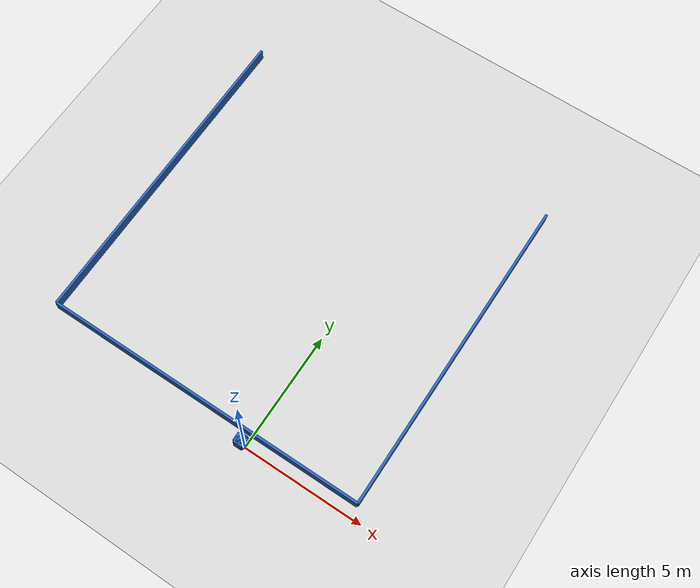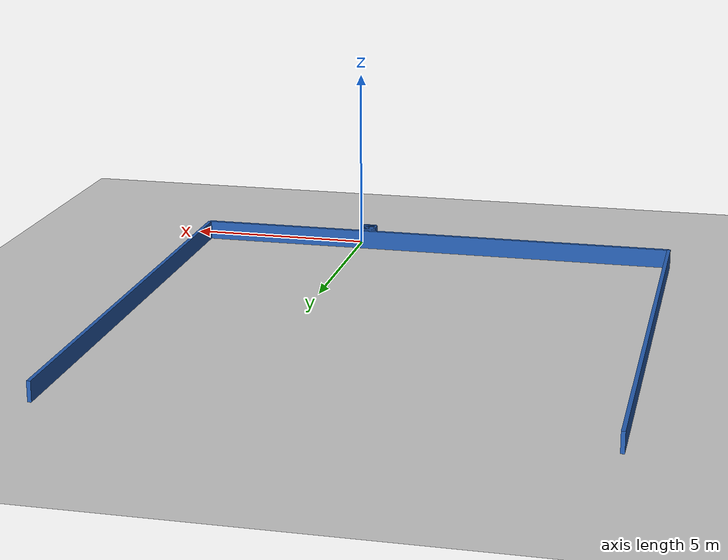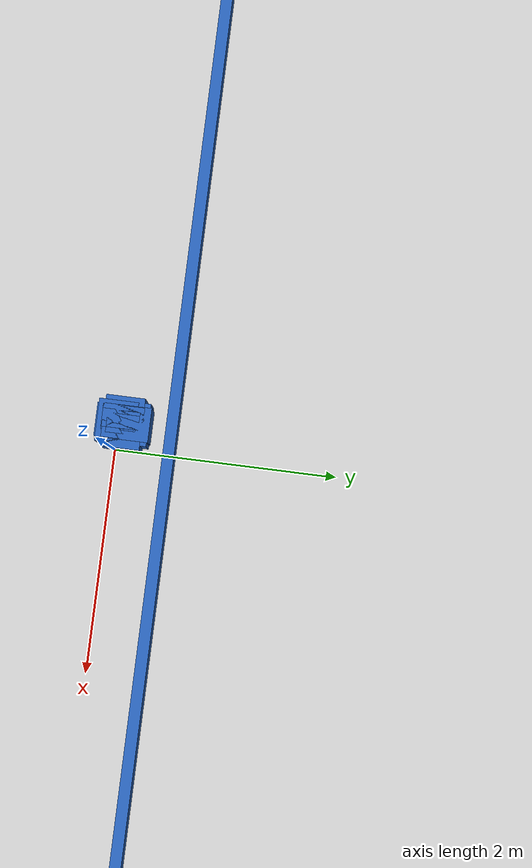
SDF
<?xml version="1.0" ?>
    <sdf version="1.5">
      <world name="default">
        <!-- A global light source -->
        <include>
          <uri>model://sun</uri>
        </include>
        <!-- A ground plane -->
        <include>
          <uri>model://ground_plane</uri>
        </include>

    <model name='libopen_space_final_T2B_129_11'>
      <static>1</static>
      <pose frame=''>-0.225000 0.075000 0.000000 0.000000 0.000000 0.000000</pose>
      <link name='link'>
        <inertial>
          <mass>1</mass>
          <inertia>
            <ixx>0.145833</ixx>
            <ixy>0</ixy>
            <ixz>0</ixz>
            <iyy>0.145833</iyy>
            <iyz>0</iyz>
            <izz>0.125</izz>
          </inertia>
        </inertial>
        <collision name='collision'>
          <geometry>
            <box>
              <size>0.14 0.28 1</size>
            </box>
          </geometry>
          <max_contacts>10</max_contacts>
          <surface>
            <contact>
              <ode/>
            </contact>
            <bounce/>
            <friction>
              <torsional>
                <ode/>
              </torsional>
              <ode/>
            </friction>
          </surface>
        </collision>
        <visual name='visual'>
          <geometry>
            <box>
              <size>0.14 0.28 1</size>
            </box>
          </geometry>
	    <material>
              <ambient>0.152000 0.379000 0.720000 1</ambient>
	      <diffuse>0.152000 0.379000 0.720000 1</diffuse>
          </material>
          <material>
            <script>
              <name>Gazebo/Grey</name>
              <uri>file://media/materials/scripts/gazebo.material</uri>
            </script>
          </material>
        </visual>
        <self_collide>0</self_collide>
        <kinematic>0</kinematic>
        <gravity>1</gravity>
      </link>
      <plugin name='libopen_space_final_T2B_129_11' filename='libopen_space_final_T2B_129_11.so'/>
    </model>

    <model name='libopen_space_final_T2B_122_30'>
      <static>1</static>
      <pose frame=''>-0.225000 0.075000 0.000000 0.000000 0.000000 0.000000</pose>
      <link name='link'>
        <inertial>
          <mass>1</mass>
          <inertia>
            <ixx>0.145833</ixx>
            <ixy>0</ixy>
            <ixz>0</ixz>
            <iyy>0.145833</iyy>
            <iyz>0</iyz>
            <izz>0.125</izz>
          </inertia>
        </inertial>
        <collision name='collision'>
          <geometry>
            <box>
              <size>0.30 0.47 1</size>
            </box>
          </geometry>
          <max_contacts>10</max_contacts>
          <surface>
            <contact>
              <ode/>
            </contact>
            <bounce/>
            <friction>
              <torsional>
                <ode/>
              </torsional>
              <ode/>
            </friction>
          </surface>
        </collision>
        <visual name='visual'>
          <geometry>
            <box>
              <size>0.30 0.47 1</size>
            </box>
          </geometry>
	    <material>
              <ambient>0.152000 0.379000 0.720000 1</ambient>
	      <diffuse>0.152000 0.379000 0.720000 1</diffuse>
          </material>
          <material>
            <script>
              <name>Gazebo/Grey</name>
              <uri>file://media/materials/scripts/gazebo.material</uri>
            </script>
          </material>
        </visual>
        <self_collide>0</self_collide>
        <kinematic>0</kinematic>
        <gravity>1</gravity>
      </link>
      <plugin name='libopen_space_final_T2B_122_30' filename='libopen_space_final_T2B_122_30.so'/>
    </model>

    <model name='libopen_space_final_T2B_134_25'>
      <static>1</static>
      <pose frame=''>-0.225000 0.075000 0.000000 0.000000 0.000000 0.000000</pose>
      <link name='link'>
        <inertial>
          <mass>1</mass>
          <inertia>
            <ixx>0.145833</ixx>
            <ixy>0</ixy>
            <ixz>0</ixz>
            <iyy>0.145833</iyy>
            <iyz>0</iyz>
            <izz>0.125</izz>
          </inertia>
        </inertial>
        <collision name='collision'>
          <geometry>
            <box>
              <size>0.21 0.37 1</size>
            </box>
          </geometry>
          <max_contacts>10</max_contacts>
          <surface>
            <contact>
              <ode/>
            </contact>
            <bounce/>
            <friction>
              <torsional>
                <ode/>
              </torsional>
              <ode/>
            </friction>
          </surface>
        </collision>
        <visual name='visual'>
          <geometry>
            <box>
              <size>0.21 0.37 1</size>
            </box>
          </geometry>
	    <material>
              <ambient>0.152000 0.379000 0.720000 1</ambient>
	      <diffuse>0.152000 0.379000 0.720000 1</diffuse>
          </material>
          <material>
            <script>
              <name>Gazebo/Grey</name>
              <uri>file://media/materials/scripts/gazebo.material</uri>
            </script>
          </material>
        </visual>
        <self_collide>0</self_collide>
        <kinematic>0</kinematic>
        <gravity>1</gravity>
      </link>
      <plugin name='libopen_space_final_T2B_134_25' filename='libopen_space_final_T2B_134_25.so'/>
    </model>

    <model name='libopen_space_final_T2B_125_67'>
      <static>1</static>
      <pose frame=''>-0.225000 0.075000 0.000000 0.000000 0.000000 0.000000</pose>
      <link name='link'>
        <inertial>
          <mass>1</mass>
          <inertia>
            <ixx>0.145833</ixx>
            <ixy>0</ixy>
            <ixz>0</ixz>
            <iyy>0.145833</iyy>
            <iyz>0</iyz>
            <izz>0.125</izz>
          </inertia>
        </inertial>
        <collision name='collision'>
          <geometry>
            <box>
              <size>0.31 0.25 1</size>
            </box>
          </geometry>
          <max_contacts>10</max_contacts>
          <surface>
            <contact>
              <ode/>
            </contact>
            <bounce/>
            <friction>
              <torsional>
                <ode/>
              </torsional>
              <ode/>
            </friction>
          </surface>
        </collision>
        <visual name='visual'>
          <geometry>
            <box>
              <size>0.31 0.25 1</size>
            </box>
          </geometry>
	    <material>
              <ambient>0.152000 0.379000 0.720000 1</ambient>
	      <diffuse>0.152000 0.379000 0.720000 1</diffuse>
          </material>
          <material>
            <script>
              <name>Gazebo/Grey</name>
              <uri>file://media/materials/scripts/gazebo.material</uri>
            </script>
          </material>
        </visual>
        <self_collide>0</self_collide>
        <kinematic>0</kinematic>
        <gravity>1</gravity>
      </link>
      <plugin name='libopen_space_final_T2B_125_67' filename='libopen_space_final_T2B_125_67.so'/>
    </model>

    <model name='libopen_space_final_T2B_77_65'>
      <static>1</static>
      <pose frame=''>-0.225000 0.075000 0.000000 0.000000 0.000000 0.000000</pose>
      <link name='link'>
        <inertial>
          <mass>1</mass>
          <inertia>
            <ixx>0.145833</ixx>
            <ixy>0</ixy>
            <ixz>0</ixz>
            <iyy>0.145833</iyy>
            <iyz>0</iyz>
            <izz>0.125</izz>
          </inertia>
        </inertial>
        <collision name='collision'>
          <geometry>
            <box>
              <size>0.20 0.28 1</size>
            </box>
          </geometry>
          <max_contacts>10</max_contacts>
          <surface>
            <contact>
              <ode/>
            </contact>
            <bounce/>
            <friction>
              <torsional>
                <ode/>
              </torsional>
              <ode/>
            </friction>
          </surface>
        </collision>
        <visual name='visual'>
          <geometry>
            <box>
              <size>0.20 0.28 1</size>
            </box>
          </geometry>
	    <material>
              <ambient>0.152000 0.379000 0.720000 1</ambient>
	      <diffuse>0.152000 0.379000 0.720000 1</diffuse>
          </material>
          <material>
            <script>
              <name>Gazebo/Grey</name>
              <uri>file://media/materials/scripts/gazebo.material</uri>
            </script>
          </material>
        </visual>
        <self_collide>0</self_collide>
        <kinematic>0</kinematic>
        <gravity>1</gravity>
      </link>
      <plugin name='libopen_space_final_T2B_77_65' filename='libopen_space_final_T2B_77_65.so'/>
    </model>

    <model name='libopen_space_final_T2B_85_42'>
      <static>1</static>
      <pose frame=''>-0.225000 0.075000 0.000000 0.000000 0.000000 0.000000</pose>
      <link name='link'>
        <inertial>
          <mass>1</mass>
          <inertia>
            <ixx>0.145833</ixx>
            <ixy>0</ixy>
            <ixz>0</ixz>
            <iyy>0.145833</iyy>
            <iyz>0</iyz>
            <izz>0.125</izz>
          </inertia>
        </inertial>
        <collision name='collision'>
          <geometry>
            <box>
              <size>0.45 0.34 1</size>
            </box>
          </geometry>
          <max_contacts>10</max_contacts>
          <surface>
            <contact>
              <ode/>
            </contact>
            <bounce/>
            <friction>
              <torsional>
                <ode/>
              </torsional>
              <ode/>
            </friction>
          </surface>
        </collision>
        <visual name='visual'>
          <geometry>
            <box>
              <size>0.45 0.34 1</size>
            </box>
          </geometry>
	    <material>
              <ambient>0.152000 0.379000 0.720000 1</ambient>
	      <diffuse>0.152000 0.379000 0.720000 1</diffuse>
          </material>
          <material>
            <script>
              <name>Gazebo/Grey</name>
              <uri>file://media/materials/scripts/gazebo.material</uri>
            </script>
          </material>
        </visual>
        <self_collide>0</self_collide>
        <kinematic>0</kinematic>
        <gravity>1</gravity>
      </link>
      <plugin name='libopen_space_final_T2B_85_42' filename='libopen_space_final_T2B_85_42.so'/>
    </model>

    <model name='libopen_space_final_T2B_125_48'>
      <static>1</static>
      <pose frame=''>-0.225000 0.075000 0.000000 0.000000 0.000000 0.000000</pose>
      <link name='link'>
        <inertial>
          <mass>1</mass>
          <inertia>
            <ixx>0.145833</ixx>
            <ixy>0</ixy>
            <ixz>0</ixz>
            <iyy>0.145833</iyy>
            <iyz>0</iyz>
            <izz>0.125</izz>
          </inertia>
        </inertial>
        <collision name='collision'>
          <geometry>
            <box>
              <size>0.29 0.12 1</size>
            </box>
          </geometry>
          <max_contacts>10</max_contacts>
          <surface>
            <contact>
              <ode/>
            </contact>
            <bounce/>
            <friction>
              <torsional>
                <ode/>
              </torsional>
              <ode/>
            </friction>
          </surface>
        </collision>
        <visual name='visual'>
          <geometry>
            <box>
              <size>0.29 0.12 1</size>
            </box>
          </geometry>
	    <material>
              <ambient>0.152000 0.379000 0.720000 1</ambient>
	      <diffuse>0.152000 0.379000 0.720000 1</diffuse>
          </material>
          <material>
            <script>
              <name>Gazebo/Grey</name>
              <uri>file://media/materials/scripts/gazebo.material</uri>
            </script>
          </material>
        </visual>
        <self_collide>0</self_collide>
        <kinematic>0</kinematic>
        <gravity>1</gravity>
      </link>
      <plugin name='libopen_space_final_T2B_125_48' filename='libopen_space_final_T2B_125_48.so'/>
    </model>

    <model name='libopen_space_final_T2B_83_66'>
      <static>1</static>
      <pose frame=''>-0.225000 0.075000 0.000000 0.000000 0.000000 0.000000</pose>
      <link name='link'>
        <inertial>
          <mass>1</mass>
          <inertia>
            <ixx>0.145833</ixx>
            <ixy>0</ixy>
            <ixz>0</ixz>
            <iyy>0.145833</iyy>
            <iyz>0</iyz>
            <izz>0.125</izz>
          </inertia>
        </inertial>
        <collision name='collision'>
          <geometry>
            <box>
              <size>0.23 0.21 1</size>
            </box>
          </geometry>
          <max_contacts>10</max_contacts>
          <surface>
            <contact>
              <ode/>
            </contact>
            <bounce/>
            <friction>
              <torsional>
                <ode/>
              </torsional>
              <ode/>
            </friction>
          </surface>
        </collision>
        <visual name='visual'>
          <geometry>
            <box>
              <size>0.23 0.21 1</size>
            </box>
          </geometry>
	    <material>
              <ambient>0.152000 0.379000 0.720000 1</ambient>
	      <diffuse>0.152000 0.379000 0.720000 1</diffuse>
          </material>
          <material>
            <script>
              <name>Gazebo/Grey</name>
              <uri>file://media/materials/scripts/gazebo.material</uri>
            </script>
          </material>
        </visual>
        <self_collide>0</self_collide>
        <kinematic>0</kinematic>
        <gravity>1</gravity>
      </link>
      <plugin name='libopen_space_final_T2B_83_66' filename='libopen_space_final_T2B_83_66.so'/>
    </model>

    <model name='libopen_space_final_T2B_105_94'>
      <static>1</static>
      <pose frame=''>-0.225000 0.075000 0.000000 0.000000 0.000000 0.000000</pose>
      <link name='link'>
        <inertial>
          <mass>1</mass>
          <inertia>
            <ixx>0.145833</ixx>
            <ixy>0</ixy>
            <ixz>0</ixz>
            <iyy>0.145833</iyy>
            <iyz>0</iyz>
            <izz>0.125</izz>
          </inertia>
        </inertial>
        <collision name='collision'>
          <geometry>
            <box>
              <size>0.11 0.36 1</size>
            </box>
          </geometry>
          <max_contacts>10</max_contacts>
          <surface>
            <contact>
              <ode/>
            </contact>
            <bounce/>
            <friction>
              <torsional>
                <ode/>
              </torsional>
              <ode/>
            </friction>
          </surface>
        </collision>
        <visual name='visual'>
          <geometry>
            <box>
              <size>0.11 0.36 1</size>
            </box>
          </geometry>
	    <material>
              <ambient>0.152000 0.379000 0.720000 1</ambient>
	      <diffuse>0.152000 0.379000 0.720000 1</diffuse>
          </material>
          <material>
            <script>
              <name>Gazebo/Grey</name>
              <uri>file://media/materials/scripts/gazebo.material</uri>
            </script>
          </material>
        </visual>
        <self_collide>0</self_collide>
        <kinematic>0</kinematic>
        <gravity>1</gravity>
      </link>
      <plugin name='libopen_space_final_T2B_105_94' filename='libopen_space_final_T2B_105_94.so'/>
    </model>

    <model name='libopen_space_final_T2B_121_6'>
      <static>1</static>
      <pose frame=''>-0.225000 0.075000 0.000000 0.000000 0.000000 0.000000</pose>
      <link name='link'>
        <inertial>
          <mass>1</mass>
          <inertia>
            <ixx>0.145833</ixx>
            <ixy>0</ixy>
            <ixz>0</ixz>
            <iyy>0.145833</iyy>
            <iyz>0</iyz>
            <izz>0.125</izz>
          </inertia>
        </inertial>
        <collision name='collision'>
          <geometry>
            <box>
              <size>0.14 0.23 1</size>
            </box>
          </geometry>
          <max_contacts>10</max_contacts>
          <surface>
            <contact>
              <ode/>
            </contact>
            <bounce/>
            <friction>
              <torsional>
                <ode/>
              </torsional>
              <ode/>
            </friction>
          </surface>
        </collision>
        <visual name='visual'>
          <geometry>
            <box>
              <size>0.14 0.23 1</size>
            </box>
          </geometry>
	    <material>
              <ambient>0.152000 0.379000 0.720000 1</ambient>
	      <diffuse>0.152000 0.379000 0.720000 1</diffuse>
          </material>
          <material>
            <script>
              <name>Gazebo/Grey</name>
              <uri>file://media/materials/scripts/gazebo.material</uri>
            </script>
          </material>
        </visual>
        <self_collide>0</self_collide>
        <kinematic>0</kinematic>
        <gravity>1</gravity>
      </link>
      <plugin name='libopen_space_final_T2B_121_6' filename='libopen_space_final_T2B_121_6.so'/>
    </model>

    <model name='libopen_space_final_T2B_57_10'>
      <static>1</static>
      <pose frame=''>-0.225000 0.075000 0.000000 0.000000 0.000000 0.000000</pose>
      <link name='link'>
        <inertial>
          <mass>1</mass>
          <inertia>
            <ixx>0.145833</ixx>
            <ixy>0</ixy>
            <ixz>0</ixz>
            <iyy>0.145833</iyy>
            <iyz>0</iyz>
            <izz>0.125</izz>
          </inertia>
        </inertial>
        <collision name='collision'>
          <geometry>
            <box>
              <size>0.37 0.45 1</size>
            </box>
          </geometry>
          <max_contacts>10</max_contacts>
          <surface>
            <contact>
              <ode/>
            </contact>
            <bounce/>
            <friction>
              <torsional>
                <ode/>
              </torsional>
              <ode/>
            </friction>
          </surface>
        </collision>
        <visual name='visual'>
          <geometry>
            <box>
              <size>0.37 0.45 1</size>
            </box>
          </geometry>
	    <material>
              <ambient>0.152000 0.379000 0.720000 1</ambient>
	      <diffuse>0.152000 0.379000 0.720000 1</diffuse>
          </material>
          <material>
            <script>
              <name>Gazebo/Grey</name>
              <uri>file://media/materials/scripts/gazebo.material</uri>
            </script>
          </material>
        </visual>
        <self_collide>0</self_collide>
        <kinematic>0</kinematic>
        <gravity>1</gravity>
      </link>
      <plugin name='libopen_space_final_T2B_57_10' filename='libopen_space_final_T2B_57_10.so'/>
    </model>

    <model name='libopen_space_final_T2B_96_80'>
      <static>1</static>
      <pose frame=''>-0.225000 0.075000 0.000000 0.000000 0.000000 0.000000</pose>
      <link name='link'>
        <inertial>
          <mass>1</mass>
          <inertia>
            <ixx>0.145833</ixx>
            <ixy>0</ixy>
            <ixz>0</ixz>
            <iyy>0.145833</iyy>
            <iyz>0</iyz>
            <izz>0.125</izz>
          </inertia>
        </inertial>
        <collision name='collision'>
          <geometry>
            <box>
              <size>0.29 0.35 1</size>
            </box>
          </geometry>
          <max_contacts>10</max_contacts>
          <surface>
            <contact>
              <ode/>
            </contact>
            <bounce/>
            <friction>
              <torsional>
                <ode/>
              </torsional>
              <ode/>
            </friction>
          </surface>
        </collision>
        <visual name='visual'>
          <geometry>
            <box>
              <size>0.29 0.35 1</size>
            </box>
          </geometry>
	    <material>
              <ambient>0.152000 0.379000 0.720000 1</ambient>
	      <diffuse>0.152000 0.379000 0.720000 1</diffuse>
          </material>
          <material>
            <script>
              <name>Gazebo/Grey</name>
              <uri>file://media/materials/scripts/gazebo.material</uri>
            </script>
          </material>
        </visual>
        <self_collide>0</self_collide>
        <kinematic>0</kinematic>
        <gravity>1</gravity>
      </link>
      <plugin name='libopen_space_final_T2B_96_80' filename='libopen_space_final_T2B_96_80.so'/>
    </model>

    <model name='libopen_space_final_T2B_79_14'>
      <static>1</static>
      <pose frame=''>-0.225000 0.075000 0.000000 0.000000 0.000000 0.000000</pose>
      <link name='link'>
        <inertial>
          <mass>1</mass>
          <inertia>
            <ixx>0.145833</ixx>
            <ixy>0</ixy>
            <ixz>0</ixz>
            <iyy>0.145833</iyy>
            <iyz>0</iyz>
            <izz>0.125</izz>
          </inertia>
        </inertial>
        <collision name='collision'>
          <geometry>
            <box>
              <size>0.29 0.12 1</size>
            </box>
          </geometry>
          <max_contacts>10</max_contacts>
          <surface>
            <contact>
              <ode/>
            </contact>
            <bounce/>
            <friction>
              <torsional>
                <ode/>
              </torsional>
              <ode/>
            </friction>
          </surface>
        </collision>
        <visual name='visual'>
          <geometry>
            <box>
              <size>0.29 0.12 1</size>
            </box>
          </geometry>
	    <material>
              <ambient>0.152000 0.379000 0.720000 1</ambient>
	      <diffuse>0.152000 0.379000 0.720000 1</diffuse>
          </material>
          <material>
            <script>
              <name>Gazebo/Grey</name>
              <uri>file://media/materials/scripts/gazebo.material</uri>
            </script>
          </material>
        </visual>
        <self_collide>0</self_collide>
        <kinematic>0</kinematic>
        <gravity>1</gravity>
      </link>
      <plugin name='libopen_space_final_T2B_79_14' filename='libopen_space_final_T2B_79_14.so'/>
    </model>

    <model name='libopen_space_final_T2B_81_68'>
      <static>1</static>
      <pose frame=''>-0.225000 0.075000 0.000000 0.000000 0.000000 0.000000</pose>
      <link name='link'>
        <inertial>
          <mass>1</mass>
          <inertia>
            <ixx>0.145833</ixx>
            <ixy>0</ixy>
            <ixz>0</ixz>
            <iyy>0.145833</iyy>
            <iyz>0</iyz>
            <izz>0.125</izz>
          </inertia>
        </inertial>
        <collision name='collision'>
          <geometry>
            <box>
              <size>0.21 0.23 1</size>
            </box>
          </geometry>
          <max_contacts>10</max_contacts>
          <surface>
            <contact>
              <ode/>
            </contact>
            <bounce/>
            <friction>
              <torsional>
                <ode/>
              </torsional>
              <ode/>
            </friction>
          </surface>
        </collision>
        <visual name='visual'>
          <geometry>
            <box>
              <size>0.21 0.23 1</size>
            </box>
          </geometry>
	    <material>
              <ambient>0.152000 0.379000 0.720000 1</ambient>
	      <diffuse>0.152000 0.379000 0.720000 1</diffuse>
          </material>
          <material>
            <script>
              <name>Gazebo/Grey</name>
              <uri>file://media/materials/scripts/gazebo.material</uri>
            </script>
          </material>
        </visual>
        <self_collide>0</self_collide>
        <kinematic>0</kinematic>
        <gravity>1</gravity>
      </link>
      <plugin name='libopen_space_final_T2B_81_68' filename='libopen_space_final_T2B_81_68.so'/>
    </model>

        <model name='bottom_wall'>
          <static>1</static>
          <pose frame=''>-2.25 0.5 0.000000 0.000000 0.000000 1.57079632</pose>
          <link name='link'>
            <inertial>
            <mass>1</mass>
            <inertia>
              <ixx>0.145833</ixx>
              <ixy>0</ixy>
              <ixz>0</ixz>
              <iyy>0.145833</iyy>
              <iyz>0</iyz>
              <izz>0.125</izz>
            </inertia>
            </inertial>
            <collision name='collision'>
            <geometry>
              <box>
              <size>0.1 13.5 1</size>
              </box>
            </geometry>
            <max_contacts>10</max_contacts>
            <surface>
              <contact>
              <ode/>
              </contact>
              <bounce/>
              <friction>
              <torsional>
                <ode/>
              </torsional>
              <ode/>
              </friction>
            </surface>
            </collision>
            <visual name='visual'>
            <geometry>
              <box>
              <size>0.1 13.5 1</size>
              </box>
            </geometry>
            <material>
              <ambient>0.152000 0.379000 0.720000 1</ambient>
            <diffuse>0.152000 0.379000 0.720000 1</diffuse>
            </material>
            <material>
              <script>
              <name>Gazebo/Grey</name>
              <uri>file://media/materials/scripts/gazebo.material</uri>
              </script>
            </material>
            </visual>
            <self_collide>0</self_collide>
            <kinematic>0</kinematic>
            <gravity>1</gravity>
          </link>
        </model>

        <model name='left_wall'>
          <static>1</static>
          <pose frame=''>-9 7.25 0.000000 0.000000 0.000000 0.000000</pose>
          <link name='link'>
            <inertial>
            <mass>1</mass>
            <inertia>
              <ixx>0.145833</ixx>
              <ixy>0</ixy>
              <ixz>0</ixz>
              <iyy>0.145833</iyy>
              <iyz>0</iyz>
              <izz>0.125</izz>
            </inertia>
            </inertial>
            <collision name='collision'>
            <geometry>
              <box>
              <size>0.1 13.5 1</size>
              </box>
            </geometry>
            <max_contacts>10</max_contacts>
            <surface>
              <contact>
              <ode/>
              </contact>
              <bounce/>
              <friction>
              <torsional>
                <ode/>
              </torsional>
              <ode/>
              </friction>
            </surface>
            </collision>
            <visual name='visual'>
            <geometry>
              <box>
              <size>0.1 13.5 1</size>
              </box>
            </geometry>
            <material>
              <ambient>0.152000 0.379000 0.720000 1</ambient>
            <diffuse>0.152000 0.379000 0.720000 1</diffuse>
            </material>
            <material>
              <script>
              <name>Gazebo/Grey</name>
              <uri>file://media/materials/scripts/gazebo.material</uri>
              </script>
            </material>
            </visual>
            <self_collide>0</self_collide>
            <kinematic>0</kinematic>
            <gravity>1</gravity>
          </link>
        </model>

        <model name='right_wall'>
          <static>1</static>
          <pose frame=''>4.5 7.25 0.000000 0.000000 0.000000 0.000000</pose>
          <link name='link'>
            <inertial>
            <mass>1</mass>
            <inertia>
              <ixx>0.145833</ixx>
              <ixy>0</ixy>
              <ixz>0</ixz>
              <iyy>0.145833</iyy>
              <iyz>0</iyz>
              <izz>0.125</izz>
            </inertia>
            </inertial>
            <collision name='collision'>
            <geometry>
              <box>
              <size>0.1 13.5 1</size>
              </box>
            </geometry>
            <max_contacts>10</max_contacts>
            <surface>
              <contact>
              <ode/>
              </contact>
              <bounce/>
              <friction>
              <torsional>
                <ode/>
              </torsional>
              <ode/>
              </friction>
            </surface>
            </collision>
            <visual name='visual'>
            <geometry>
              <box>
              <size>0.1 13.5 1</size>
              </box>
            </geometry>
            <material>
              <ambient>0.152000 0.379000 0.720000 1</ambient>
            <diffuse>0.152000 0.379000 0.720000 1</diffuse>
            </material>
            <material>
              <script>
              <name>Gazebo/Grey</name>
              <uri>file://media/materials/scripts/gazebo.material</uri>
              </script>
            </material>
            </visual>
            <self_collide>0</self_collide>
            <kinematic>0</kinematic>
            <gravity>1</gravity>
          </link>
        </model>

      </world>
    </sdf>"
